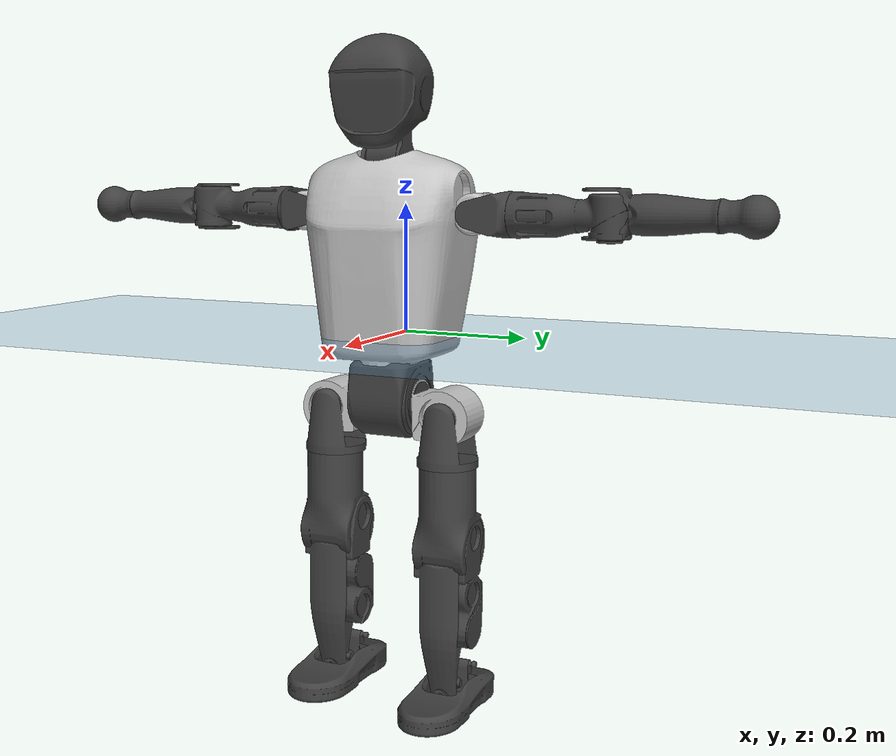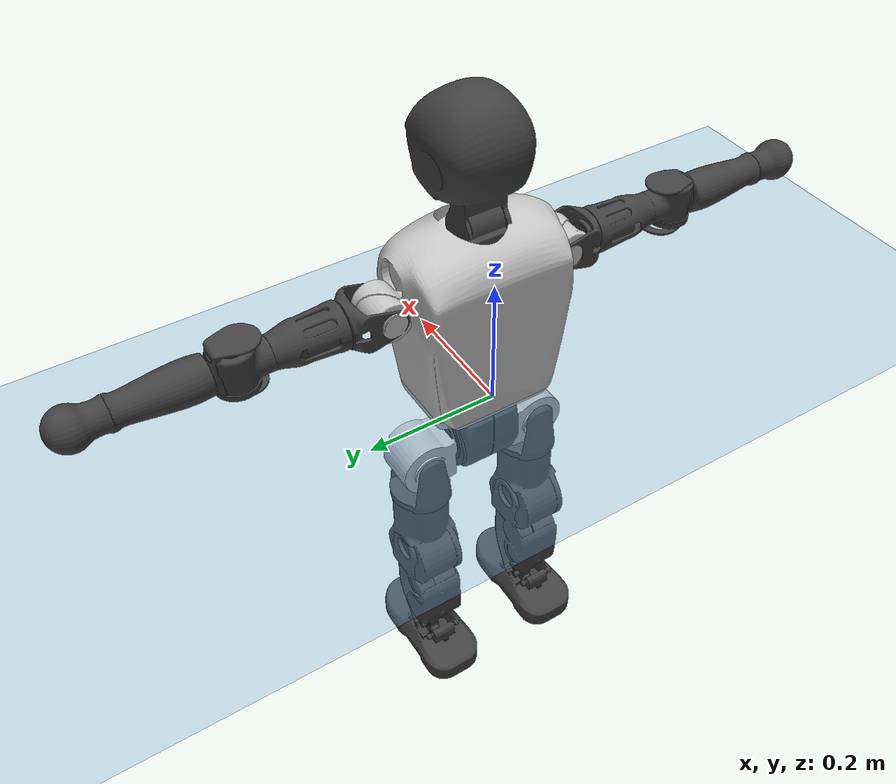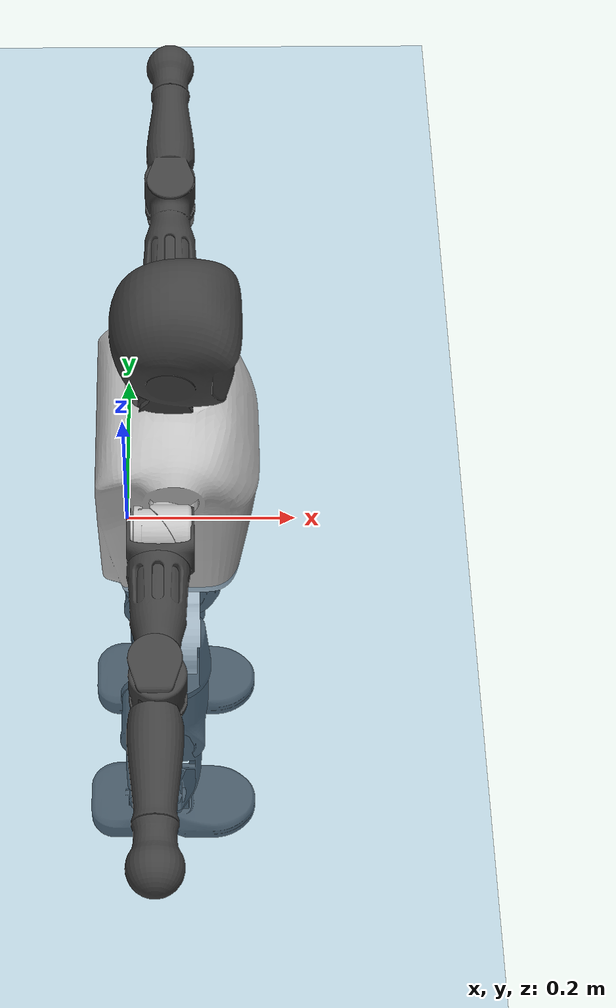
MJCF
<mujoco model="T1">
  <compiler angle="radian" assetdir="assets" balanceinertia="true" inertiafromgeom="false"/>

  <option timestep="0.005" density="1.2" viscosity="2e-05"/>

  <size nkey="1"/>

  <visual>
    <quality shadowsize="8192"/>
    <map shadowclip="0.5"/>
  </visual>

  <default>
    <default class="/">
      <joint armature="0.01" damping="0.01" frictionloss="0.1"/>
      <geom contype="0" conaffinity="0" group="1" solref="-1000 -80"/>
      <site size="0.01 0.005 0.005" group="5"/>
      <general forcelimited="true" biastype="affine" gainprm="25" biasprm="0 -25 -0.6"/>
      <default class="t1">
        <geom rgba="0.25 0.25 0.25 1"/>
        <default class="visual">
          <geom type="mesh" group="2"/>
        </default>
        <default class="collision">
          <geom group="3"/>
        </default>
        <default class="foot">
          <geom size="0.1115 0.05 0.015" type="box" condim="6" group="4" priority="1" solimp="0.015 1 0.015"/>
        </default>
        <default class="reward_collision_sphere">
          <geom group="5" rgba="1 0 0 1"/>
        </default>
      </default>
    </default>
  </default>

  <asset>
    <texture type="skybox" colorspace="auto" name="//unnamed_texture_0" builtin="gradient" rgb1="0.95 0.95 0.95" rgb2="0.95 0.95 0.95" width="100" height="600"/>
    <texture type="2d" colorspace="auto" name="texplane" builtin="checker" rgb1="0.345 0.575 0.748" rgb2="0.345 0.575 0.748" markrgb="1 1 1" width="512" height="512"/>
    <material name="MatPlane" class="/" texture="texplane" texuniform="true" texrepeat="2 2" specular="0.9"/>
    <mesh name="Trunk" class="/" file="Trunk.stl"/>
    <mesh name="H1" class="/" file="H1.stl"/>
    <mesh name="H2" class="/" file="H2.stl"/>
    <mesh name="AL1" class="/" file="AL1.stl"/>
    <mesh name="AL2" class="/" file="AL2.stl"/>
    <mesh name="AL3" class="/" file="AL3.stl"/>
    <mesh name="left_hand_link" class="/" file="left_hand_link.stl"/>
    <mesh name="AR1" class="/" file="AR1.stl"/>
    <mesh name="AR2" class="/" file="AR2.stl"/>
    <mesh name="AR3" class="/" file="AR3.stl"/>
    <mesh name="right_hand_link" class="/" file="right_hand_link.stl"/>
    <mesh name="Waist" class="/" file="Waist.stl"/>
    <mesh name="Hip_Pitch_Left" class="/" file="Hip_Pitch_Left.stl"/>
    <mesh name="Hip_Roll_Left" class="/" file="Hip_Roll_Left.stl"/>
    <mesh name="Hip_Yaw_Left" class="/" file="Hip_Yaw_Left.stl"/>
    <mesh name="Shank_Left" class="/" file="Shank_Left.stl"/>
    <mesh name="Ankle_Cross_Left" class="/" file="Ankle_Cross_Left.stl"/>
    <mesh name="left_foot_link" class="/" file="left_foot_link.stl"/>
    <mesh name="Hip_Pitch_Right" class="/" file="Hip_Pitch_Right.stl"/>
    <mesh name="Hip_Roll_Right" class="/" file="Hip_Roll_Right.stl"/>
    <mesh name="Hip_Yaw_Right" class="/" file="Hip_Yaw_Right.stl"/>
    <mesh name="Shank_Right" class="/" file="Shank_Right.stl"/>
    <mesh name="Ankle_Cross_Right" class="/" file="Ankle_Cross_Right.stl"/>
    <mesh name="right_foot_link" class="/" file="right_foot_link.stl"/>
  </asset>

  <worldbody>
    <geom name="floor" class="/" size="100 100 0.125" type="plane" group="0" material="MatPlane"/>
    <light name="toplight_shadow" class="/" pos="0 0 5" dir="0.0990148 0.0990148 -0.990148" type="directional" ambient="0.04 0.04 0.04" diffuse="0.55 0.55 0.55" specular="0.12 0.12 0.12"/>
    <light name="toplight_fill" class="/" pos="0 0 5" dir="0.0990148 0.0990148 -0.990148" type="directional" castshadow="false" ambient="0.04 0.04 0.04" diffuse="0.3 0.3 0.3" specular="0.08 0.08 0.08"/>
    <body name="trunk" childclass="t1" pos="0.00043099 -0.000104632 0.00280329" quat="1 0.000502071 2.64239e-05 0.000148694">
      <inertial pos="0.045171 0.000745073 0.0901354" quat="0.999986 -0.00511803 -0.00139794 0.000431669" mass="7.24141" diaginertia="0.0346196 0.0450039 0.0248849"/>
      <joint name="//unnamed_joint_0" type="free" armature="0" damping="0" frictionloss="0"/>
      <geom name="//unnamed_geom_1" class="visual" rgba="0.76 0.76 0.76 1" mesh="Trunk"/>
      <geom name="//unnamed_geom_2" class="collision" size="0.0646607 0.0862142 0.129321" pos="0.0497291 0 0.102855" type="box"/>
      <geom name="//unnamed_geom_3" class="reward_collision_sphere" size="0.0991463" pos="0.0497291 0 0.0857127"/>
      <geom name="//unnamed_geom_4" class="reward_collision_sphere" size="0.0129321" pos="0.0497291 0.0765408 0"/>
      <geom name="//unnamed_geom_5" class="reward_collision_sphere" size="0.0129321" pos="0.0497291 -0.0765408 0"/>
      <geom name="//unnamed_geom_6" class="reward_collision_sphere" size="0.0129321" pos="0.0497291 0.0963514 0.154283"/>
      <geom name="//unnamed_geom_7" class="reward_collision_sphere" size="0.0129321" pos="0.0497291 -0.0963514 0.154283"/>
      <site name="imu" pos="0.0103682 -0.0133285 0.00625036" size="0.00862142"/>
      <camera name="track" pos="0 -1.80096 0" quat="0.707107 0.707107 0 0" mode="trackcom"/>
      <camera name="ego_camera" pos="0.101116 0 0.359993" quat="-0.5 -0.5 0.5 0.5"/>
      <body name="H1" pos="0.0494262 -0.0027416 0.207519" quat="0.999999 -0.000497733 -0.000348143 -0.000825687">
        <inertial pos="-0.001965 -0.000770596 0.0499779" quat="0.763621 -0.013057 0.00234951 0.645529" mass="0.283405" diaginertia="9.79185e-05 0.000132055 7.18248e-05"/>
        <joint name="AAHead_yaw" pos="0 0 0" axis="-0.000251773 -0.00127068 0.999999" stiffness="0.0113439" range="-1.54823 1.61678" armature="0.00851108" damping="0.00843484" frictionloss="0.0865046"/>
        <geom name="//unnamed_geom_8" class="visual" mesh="H1"/>
        <body name="H2" pos="-0.000398394 -0.00260202 0.0538191" quat="1 7.49456e-05 9.52949e-05 2.6548e-05">
          <inertial pos="0.00794418 0.0033441 0.0869277" quat="0.988591 0.105371 -0.0762618 -0.0759496" mass="0.414265" diaginertia="0.000803495 0.0011318 0.000806298"/>
          <joint name="Head_pitch" pos="0 0 0" axis="0.000928685 -1 0.00031738" stiffness="0.00532827" range="-1.22859 0.400466" armature="0.00745637" damping="0" frictionloss="0.0857714"/>
          <geom name="//unnamed_geom_9" class="visual" mesh="H2"/>
          <geom name="//unnamed_geom_10" class="collision" size="0.0689714" pos="0.00828819 0 0.0942839"/>
          <geom name="//unnamed_geom_11" class="reward_collision_sphere" size="0.0775928" pos="0.0165764 0 0.0857127"/>
        </body>
      </body>
      <body name="AL1" pos="0.0472209 0.0962789 0.185911" quat="1 0.000186346 0.000760234 0.000283028">
        <inertial pos="0.0008449 0.0420368 0.00241173" quat="0.509301 0.4996 -0.496782 0.494187" mass="0.344059" diaginertia="0.000544509 0.000772445 0.000138633"/>
        <joint name="Left_Shoulder_Pitch" pos="0 0 0" axis="-1.87108e-05 1 0.000990726" range="-3.36136 1.16649" armature="0.00831082" damping="0.000556229" frictionloss="0.0871353"/>
        <geom name="//unnamed_geom_12" class="visual" rgba="0.76 0.76 0.76 1" mesh="AL1"/>
        <body name="AL2" pos="0.00162164 0.0457246 -0.000434459" quat="0.999999 -0.000934625 0.000565256 -0.000251019">
          <inertial pos="0.00479114 0.0337399 -0.00291064" quat="0.486286 0.511204 -0.485747 0.515991" mass="0.108118" diaginertia="0.000163328 0.000218157 8.50786e-05"/>
          <joint name="Left_Shoulder_Roll" pos="0 0 0" axis="-0.999996 -0.00281358 -0.000141668" range="-1.62504 1.75139" armature="0.0094516" damping="0" frictionloss="0.0827671"/>
          <geom name="//unnamed_geom_13" class="visual" mesh="AL2"/>
          <body name="AL3" pos="0.00399352 0.0576529 -7.27463e-05" quat="1 0.000171422 -0.000141549 0.000794904">
            <inertial pos="-0.00167359 0.0759694 0.000177699" quat="0.701299 0.712767 0.00624136 -0.0102096" mass="0.673285" diaginertia="0.00523522 0.00777827 0.000289444"/>
            <joint name="Left_Elbow_Pitch" pos="0 0 0" axis="0.000807419 -0.999999 -0.000795333" stiffness="0.00362702" range="-2.30652 2.27829" armature="0.00861812" damping="0.00939275" frictionloss="0.0881215"/>
            <geom name="//unnamed_geom_14" class="visual" mesh="AL3"/>
            <geom name="//unnamed_geom_15" class="collision" size="0.0258643 0.0646607" pos="0 0.045024 0" quat="0.707105 0.707108 0 0" type="cylinder"/>
            <geom name="//unnamed_geom_16" class="reward_collision_sphere" size="0.0310371"/>
            <body name="left_hand_link" pos="0.000803414 0.134912 0.00366498" quat="0.999999 0.000302971 0.00121318 4.60758e-05">
              <inertial pos="0.00024453 0.0973077 -0.00203978" quat="0.713471 0.700605 0.00771591 -0.00722964" mass="0.204779" diaginertia="0.00319446 0.00470901 9.4954e-05"/>
              <joint name="Left_Elbow_Yaw" pos="0 0 0" axis="0.00714614 -0.0141911 0.999874" stiffness="0.00044731" range="-2.45068 0.0517511" armature="0.00867906" damping="0.00055236" frictionloss="0.0951521"/>
              <geom name="//unnamed_geom_17" class="visual" mesh="left_hand_link"/>
              <geom name="//unnamed_geom_18" class="collision" size="0.0258643 0.0754374" pos="0 0.117062 0" quat="0.707105 0.707108 0 0" type="cylinder"/>
              <geom name="//unnamed_geom_19" class="reward_collision_sphere" size="0.0431071"/>
              <geom name="//unnamed_geom_20" class="reward_collision_sphere" size="0.030175" pos="0 0.0990528 0"/>
              <geom name="//unnamed_geom_21" class="reward_collision_sphere" size="0.030175" pos="0 0.193603 0"/>
            </body>
          </body>
        </body>
      </body>
      <body name="AR1" pos="0.0448206 -0.0920635 0.186888" quat="1 4.70252e-05 0.000699297 0.000330695">
        <inertial pos="-0.00167913 -0.0402593 -0.00133468" quat="0.504701 0.492796 -0.505255 0.497138" mass="0.351587" diaginertia="0.0005398 0.000778873 0.000137113"/>
        <joint name="Right_Shoulder_Pitch" pos="0 0 0" axis="-0.00706348 -0.999946 0.00760106" stiffness="0.013618" range="-1.17971 3.3308" armature="0.00864622" damping="0.0212048" frictionloss="0.0865816"/>
        <geom name="//unnamed_geom_22" class="visual" rgba="0.76 0.76 0.76 1" mesh="AR1"/>
        <body name="AR2" pos="-0.00254863 -0.038859 0.000218678" quat="0.999999 -0.000613727 0.000887068 0.000192041">
          <inertial pos="0.0005595 -0.0329981 -0.00248091" quat="0.513183 0.47952 -0.511068 0.495493" mass="0.102527" diaginertia="0.000153739 0.000202083 8.28748e-05"/>
          <joint name="Right_Shoulder_Roll" pos="0 0 0" axis="-0.999957 -0.00139811 0.00917139" stiffness="0.0116439" range="-1.70012 1.52221" armature="0.00875788" damping="0.00863" frictionloss="0.0751548"/>
          <geom name="//unnamed_geom_23" class="visual" mesh="AR2"/>
          <body name="AR3" pos="-0.00210022 -0.0524 0.00250426" quat="1 0.000514467 0.000116235 5.27599e-05">
            <inertial pos="-0.000521737 -0.0766748 0.000604065" quat="0.703017 0.711147 0.00605602 0.00106841" mass="0.637908" diaginertia="0.00490889 0.00782647 0.000288796"/>
            <joint name="Right_Elbow_Pitch" pos="0 0 0" axis="0.000328988 0.999997 0.00226151" stiffness="0.00997533" range="-2.27309 2.25962" armature="0.00902933" damping="0.0177804" frictionloss="0.0964338"/>
            <geom name="//unnamed_geom_24" class="visual" mesh="AR3"/>
            <geom name="//unnamed_geom_25" class="collision" size="0.0258643 0.0646607" pos="0 -0.045024 0" quat="0.707105 0.707108 0 0" type="cylinder"/>
            <geom name="//unnamed_geom_26" class="reward_collision_sphere" size="0.0310371"/>
            <body name="right_hand_link" pos="-0.00276039 -0.130745 -0.000190452" quat="0.999999 -0.000339525 0.000590815 0.0009519">
              <inertial pos="-0.0006907 -0.0982989 0.00313005" quat="0.710848 0.703256 -0.00658852 0.00909814" mass="0.201454" diaginertia="0.00300248 0.00470413 9.70771e-05"/>
              <joint name="Right_Elbow_Yaw" pos="0 0 0" axis="0.00375179 0.000807998 0.999993" stiffness="0.00366121" range="-0.0564858 2.42628" armature="0.00964934" damping="0.0104524" frictionloss="0.0865828"/>
              <geom name="//unnamed_geom_27" class="visual" mesh="right_hand_link"/>
              <geom name="//unnamed_geom_28" class="collision" size="0.0258643 0.0754374" pos="0 -0.117062 0" quat="0.707105 0.707108 0 0" type="cylinder"/>
              <geom name="//unnamed_geom_29" class="reward_collision_sphere" size="0.0431071"/>
              <geom name="//unnamed_geom_30" class="reward_collision_sphere" size="0.030175" pos="0 -0.0990528 0"/>
              <geom name="//unnamed_geom_31" class="reward_collision_sphere" size="0.030175" pos="0 -0.193603 0"/>
            </body>
          </body>
        </body>
      </body>
      <body name="Waist" pos="0.0523165 0.000237749 -0.101641" quat="1 -1.1814e-05 -1.95202e-06 1.28163e-05">
        <inertial pos="0.00381417 -0.000676251 0.00616025" quat="0.98436 -0.00558279 -0.176 0.00528657" mass="1.64815" diaginertia="0.00202239 0.00293598 0.00209172"/>
        <joint name="Waist" pos="0 0 0" axis="0.000104144 -0.000222437 1" stiffness="0.00200134" range="-1.52979 1.59637" armature="0.0075584" damping="0.0143751" frictionloss="0.0906822"/>
        <geom name="//unnamed_geom_32" class="visual" mesh="Waist"/>
        <body name="Hip_Pitch_Left" pos="-0.00147335 0.0975494 -0.000990298" quat="0.999999 -9.24647e-05 0.000164296 0.00104053">
          <inertial pos="-0.00108807 -0.00455903 -0.0156511" quat="0.975563 0.219113 0.016124 0.00239747" mass="0.639038" diaginertia="0.00068728 0.000855738 0.000564786"/>
          <joint name="Left_Hip_Pitch" pos="0 0 0" axis="-0.00229614 0.999997 -0.00048589" stiffness="0.011285" range="-1.81136 1.62477" armature="0.00863232" damping="0.0193341" frictionloss="0.086188"/>
          <geom name="//unnamed_geom_33" class="visual" rgba="0.76 0.76 0.76 1" mesh="Hip_Pitch_Left"/>
          <body name="Hip_Roll_Left" pos="0.00193274 -0.000819804 -0.0200629" quat="0.999999 0.000225545 -0.000578493 0.000916211">
            <inertial pos="-0.000333763 -0.000376674 -0.046323" quat="0.70645 -0.00704139 -0.00502774 0.70771" mass="0.2462" diaginertia="0.000688224 0.000870467 0.000230503"/>
            <joint name="Left_Hip_Roll" pos="0 0 0" axis="-1 -0.000394038 -0.000184734" range="-1.56835 0.198343" armature="0.00846416" damping="0.0164034" frictionloss="0.0983062"/>
            <geom name="//unnamed_geom_34" class="visual" mesh="Hip_Roll_Left"/>
            <geom name="//unnamed_geom_35" class="reward_collision_sphere" size="0.0474178"/>
            <body name="Hip_Yaw_Left" pos="0.000232241 0.000464941 -0.0722772" quat="0.999999 -0.000265763 -0.000400944 0.00108598">
              <inertial pos="-0.00576979 -0.00065272 -0.0764037" quat="0.69116 -0.03192 -0.038604 0.720964" mass="1.35844" diaginertia="0.00994679 0.0146274 0.00123231"/>
              <joint name="Left_Hip_Yaw" pos="0 0 0" axis="-0.00933659 -0.00692029 -0.999932" range="-1.00267 0.980215" armature="0.00840679" damping="0.00718622" frictionloss="0.0857201"/>
              <geom name="//unnamed_geom_36" class="visual" mesh="Hip_Yaw_Left"/>
              <geom name="//unnamed_geom_37" class="collision" size="0.0431071 0.0689714" type="cylinder"/>
              <body name="Shank_Left" pos="-0.012068 -0.000641961 -0.117317" quat="1 -0.000401475 -0.000170726 -0.000882393">
                <inertial pos="-0.00501897 0.00122571 -0.107628" quat="0.998337 0.00194744 -0.0135711 0.0559998" mass="1.1371" diaginertia="0.013353 0.0213642 0.000875965"/>
                <joint name="Left_Knee_Pitch" pos="0 0 0" axis="0.000284889 0.999995 -0.00299347" stiffness="0.00453223" range="0.0182195 2.35274" armature="0.00874873" damping="0.0162499" frictionloss="0.0980913"/>
                <geom name="//unnamed_geom_38" class="visual" mesh="Shank_Left"/>
                <geom name="//unnamed_geom_39" class="collision" size="0.0431071 0.0646607" pos="0 0 -0.102855" type="cylinder"/>
                <geom name="//unnamed_geom_40" class="reward_collision_sphere" size="0.0560392"/>
                <body name="Ankle_Cross_Left" pos="-0.0016131 -0.00129053 -0.241334" quat="0.999999 -0.000977921 -0.000628175 -5.81208e-06">
                  <inertial pos="-0.0019247 0.00200849 -0.00889898" quat="0.442789 0.554405 0.548869 0.441946" mass="0.0477073" diaginertia="1.2107e-05 1.51631e-05 5.2582e-06"/>
                  <joint name="Left_Ankle_Pitch" pos="0 0 0" axis="-0.0116581 0.999932 -0.00086509" range="-0.905771 0.396655" armature="0.00766719" damping="0.0160885" frictionloss="0.0977992"/>
                  <geom name="//unnamed_geom_41" class="visual" mesh="Ankle_Cross_Left"/>
                  <body name="left_foot_link" pos="0.00219424 -0.000525265 -0.0134797" quat="1 0.00011072 0.000118952 0.000377377">
                    <inertial pos="-0.000779358 -0.00247221 -0.00828388" quat="-0.000103916 0.620652 -6.05204e-05 0.784086" mass="0.430408" diaginertia="0.00109467 0.00141673 0.00102071"/>
                    <joint name="Left_Ankle_Roll" pos="0 0 0" axis="-0.999979 0.00576978 -0.0029042" range="-0.49114 0.416587" armature="0.0085081" damping="0.00547615" frictionloss="0.0816538"/>
                    <geom name="//unnamed_geom_42" class="visual" mesh="left_foot_link"/>
                    <geom name="left_foot" class="foot" size="0.0978732 0.0416592 0.014303" pos="0.00828819 0 -0.0128569"/>
                    <geom name="//unnamed_geom_44" class="reward_collision_sphere" size="0.0448314" pos="0.00828819 0 -0.0128569"/>
                    <geom name="//unnamed_geom_45" class="reward_collision_sphere" size="0.0258643" pos="0.0787378 -0.020711 -0.0128569"/>
                    <geom name="//unnamed_geom_46" class="reward_collision_sphere" size="0.0258643" pos="-0.0580173 -0.020711 -0.0128569"/>
                    <site name="left_foot" class="foot" pos="0.00828819 0 -0.0128569" size="0.00862142"/>
                  </body>
                </body>
              </body>
            </body>
          </body>
        </body>
        <body name="Hip_Pitch_Right" pos="-0.00157852 -0.0968007 0.00164802" quat="0.999999 -0.000695212 -0.000529114 0.00105465">
          <inertial pos="0.000346396 0.00725793 -0.0128636" quat="0.972853 -0.230267 0.0219883 0.00717972" mass="0.653676" diaginertia="0.000706964 0.00087021 0.000598449"/>
          <joint name="Right_Hip_Pitch" pos="0 0 0" axis="-0.0115322 -0.999907 0.00727641" range="-1.58089 1.81056" armature="0.00971842" damping="0.00919205" frictionloss="0.0959725"/>
          <geom name="//unnamed_geom_47" class="visual" rgba="0.76 0.76 0.76 1" mesh="Hip_Pitch_Right"/>
          <body name="Hip_Roll_Right" pos="0.000728351 -0.00160479 -0.0144346" quat="1 -0.00059843 0.000723001 -0.000291336">
            <inertial pos="0.00335366 0.00023936 -0.0485705" quat="0.702453 -0.00657183 0.00638925 0.711671" mass="0.237739" diaginertia="0.000635656 0.000865361 0.000228887"/>
            <joint name="Right_Hip_Roll" pos="0 0 0" axis="-0.999995 -0.00172094 0.00258795" stiffness="0.00845891" range="-0.188336 1.6295" armature="0.00815902" damping="0.00623883" frictionloss="0.0854708"/>
            <geom name="//unnamed_geom_48" class="visual" mesh="Hip_Roll_Right"/>
            <geom name="//unnamed_geom_49" class="reward_collision_sphere" size="0.0474178"/>
            <body name="Hip_Yaw_Right" pos="-0.000184542 -0.00262343 -0.0697582" quat="0.999999 -0.00108311 -0.000656405 0.000607202">
              <inertial pos="-0.00281862 0.000494677 -0.0761481" quat="0.706287 -0.0261124 -0.0363637 0.706509" mass="1.45466" diaginertia="0.0107435 0.0158548 0.00126982"/>
              <joint name="Right_Hip_Yaw" pos="0 0 0" axis="-0.00937838 -0.00443586 -0.999946" range="-1.01528 0.967724" armature="0.00878094" damping="0.00413512" frictionloss="0.0751903"/>
              <geom name="//unnamed_geom_50" class="visual" mesh="Hip_Yaw_Right"/>
              <geom name="//unnamed_geom_51" class="collision" size="0.0431071 0.0689714" type="cylinder"/>
              <body name="Shank_Right" pos="-0.0140721 0.00233378 -0.116181" quat="0.999999 -0.000387188 -0.00112325 -0.000325916">
                <inertial pos="-0.00222461 0.00190492 -0.104198" quat="0.999296 -0.000699894 -0.0222217 -0.0302142" mass="1.19132" diaginertia="0.0137427 0.0202501 0.000888536"/>
                <joint name="Right_Knee_Pitch" pos="0 0 0" axis="0.00379145 -0.999988 -0.00306338" stiffness="0.00904111" range="-2.34073 -0.0197532" armature="0.00819139" damping="0.0204997" frictionloss="0.0928188"/>
                <geom name="//unnamed_geom_52" class="visual" mesh="Shank_Right"/>
                <geom name="//unnamed_geom_53" class="collision" size="0.0431071 0.0646607" pos="0 0 -0.102855" type="cylinder"/>
                <geom name="//unnamed_geom_54" class="reward_collision_sphere" size="0.0560392"/>
                <body name="Ankle_Cross_Right" pos="-0.00197995 -0.00181789 -0.242271" quat="0.999999 -0.0010449 -0.000510383 -0.000746954">
                  <inertial pos="-0.0031227 0.000714697 -0.00713614" quat="0.443793 0.550896 0.546237 0.448539" mass="0.0436755" diaginertia="1.09402e-05 1.46314e-05 5.13446e-06"/>
                  <joint name="Right_Ankle_Pitch" pos="0 0 0" axis="0.00353711 -0.999949 -0.00942652" range="-0.355457 0.815515" armature="0.00982824" damping="0" frictionloss="0.0775711"/>
                  <geom name="//unnamed_geom_55" class="visual" mesh="Ankle_Cross_Right"/>
                  <body name="right_foot_link" pos="0.00228822 -0.000985318 -0.00761649" quat="0.999999 -0.000653586 -0.000603832 -0.000655096">
                    <inertial pos="-0.00018671 0.000614997 -0.0104994" quat="0.0026849 0.618821 -0.00355112 0.785519" mass="0.461117" diaginertia="0.00103557 0.00141463 0.00100529"/>
                    <joint name="Right_Ankle_Roll" pos="0 0 0" axis="-0.999891 -0.0141003 0.00436813" range="-0.399316 0.476779" armature="0.00730353" damping="0.00489102" frictionloss="0.0820209"/>
                    <geom name="//unnamed_geom_56" class="visual" mesh="right_foot_link"/>
                    <geom name="right_foot" class="foot" size="0.0967251 0.0440446 0.0133766" pos="0.00828819 0 -0.0128569"/>
                    <geom name="//unnamed_geom_58" class="reward_collision_sphere" size="0.0344857"/>
                    <geom name="//unnamed_geom_59" class="reward_collision_sphere" size="0.0258643" pos="0.00828819 0 -0.0128569"/>
                    <geom name="//unnamed_geom_60" class="reward_collision_sphere" size="0.0258643" pos="0.0787378 0.020711 -0.0128569"/>
                    <geom name="//unnamed_geom_61" class="reward_collision_sphere" size="0.0258643" pos="-0.0580173 0.020711 -0.0128569"/>
                    <site name="right_foot" class="foot" pos="0.00828819 0 -0.0128569" size="0.00862142"/>
                  </body>
                </body>
              </body>
            </body>
          </body>
        </body>
      </body>
    </body>
  </worldbody>

  <contact>
    <pair class="/" geom1="floor" geom2="left_foot" name="//unnamed_contact_0"/>
    <pair class="/" geom1="floor" geom2="right_foot" name="//unnamed_contact_1"/>
  </contact>

  <actuator>
    <general name="AAHead_yaw" class="/" joint="AAHead_yaw" forcerange="-5.62961 5.62961" gainprm="23.3929" biasprm="0 -23.3929 -0.528486"/>
    <general name="Head_pitch" class="/" joint="Head_pitch" forcerange="-5.79406 5.79406" gainprm="23.3929" biasprm="0 -23.3929 -0.528486"/>
    <general name="Left_Shoulder_Pitch" class="/" joint="Left_Shoulder_Pitch" forcerange="-15.1579 15.1579" gainprm="23.3929" biasprm="0 -23.3929 -0.528486"/>
    <general name="Left_Shoulder_Roll" class="/" joint="Left_Shoulder_Roll" forcerange="-15.2646 15.2646" gainprm="23.3929" biasprm="0 -23.3929 -0.528486"/>
    <general name="Left_Elbow_Pitch" class="/" joint="Left_Elbow_Pitch" forcerange="-17.1962 17.1962" gainprm="23.3929" biasprm="0 -23.3929 -0.528486"/>
    <general name="Left_Elbow_Yaw" class="/" joint="Left_Elbow_Yaw" forcerange="-16.1263 16.1263" gainprm="23.3929" biasprm="0 -23.3929 -0.528486"/>
    <general name="Right_Shoulder_Pitch" class="/" joint="Right_Shoulder_Pitch" forcerange="-15.1718 15.1718" gainprm="23.3929" biasprm="0 -23.3929 -0.528486"/>
    <general name="Right_Shoulder_Roll" class="/" joint="Right_Shoulder_Roll" forcerange="-15.7015 15.7015" gainprm="23.3929" biasprm="0 -23.3929 -0.528486"/>
    <general name="Right_Elbow_Pitch" class="/" joint="Right_Elbow_Pitch" forcerange="-15.4613 15.4613" gainprm="23.3929" biasprm="0 -23.3929 -0.528486"/>
    <general name="Right_Elbow_Yaw" class="/" joint="Right_Elbow_Yaw" forcerange="-17.0381 17.0381" gainprm="23.3929" biasprm="0 -23.3929 -0.528486"/>
    <general name="Waist" class="/" joint="Waist" forcerange="-27.6887 27.6887" gainprm="23.3929" biasprm="0 -23.3929 -0.528486"/>
    <general name="Left_Hip_Pitch" class="/" joint="Left_Hip_Pitch" forcerange="-35.8199 35.8199" gainprm="23.3929" biasprm="0 -23.3929 -0.528486"/>
    <general name="Left_Hip_Roll" class="/" joint="Left_Hip_Roll" forcerange="-25.2322 25.2322" gainprm="23.3929" biasprm="0 -23.3929 -0.528486"/>
    <general name="Left_Hip_Yaw" class="/" joint="Left_Hip_Yaw" forcerange="-26.4274 26.4274" gainprm="23.3929" biasprm="0 -23.3929 -0.528486"/>
    <general name="Left_Knee_Pitch" class="/" joint="Left_Knee_Pitch" forcerange="-56.5556 56.5556" gainprm="23.3929" biasprm="0 -23.3929 -0.528486"/>
    <general name="Left_Ankle_Pitch" class="/" joint="Left_Ankle_Pitch" forcerange="-16.6412 16.6412" gainprm="23.3929" biasprm="0 -23.3929 -0.528486"/>
    <general name="Left_Ankle_Roll" class="/" joint="Left_Ankle_Roll" forcerange="-12.9408 12.9408" gainprm="23.3929" biasprm="0 -23.3929 -0.528486"/>
    <general name="Right_Hip_Pitch" class="/" joint="Right_Hip_Pitch" forcerange="-42.3056 42.3056" gainprm="23.3929" biasprm="0 -23.3929 -0.528486"/>
    <general name="Right_Hip_Roll" class="/" joint="Right_Hip_Roll" forcerange="-25.3492 25.3492" gainprm="23.3929" biasprm="0 -23.3929 -0.528486"/>
    <general name="Right_Hip_Yaw" class="/" joint="Right_Hip_Yaw" forcerange="-26.3616 26.3616" gainprm="23.3929" biasprm="0 -23.3929 -0.528486"/>
    <general name="Right_Knee_Pitch" class="/" joint="Right_Knee_Pitch" forcerange="-56.7494 56.7494" gainprm="23.3929" biasprm="0 -23.3929 -0.528486"/>
    <general name="Right_Ankle_Pitch" class="/" joint="Right_Ankle_Pitch" forcerange="-16.2131 16.2131" gainprm="23.3929" biasprm="0 -23.3929 -0.528486"/>
    <general name="Right_Ankle_Roll" class="/" joint="Right_Ankle_Roll" forcerange="-11.794 11.794" gainprm="23.3929" biasprm="0 -23.3929 -0.528486"/>
  </actuator>

  <sensor>
    <gyro site="imu" name="imu_angular_velocity"/>
    <velocimeter site="imu" name="imu_linear_velocity"/>
    <framelinvel objtype="site" objname="left_foot" name="left_foot_global_linear_velocity"/>
    <framelinvel objtype="site" objname="right_foot" name="right_foot_global_linear_velocity"/>
  </sensor>

  <keyframe>
    <key name="home" qpos="0 0 0.6385 1 0 0 0 0 0 0 1.4 0 -0.4 0 -1.4 0 0.4 0 -0.4 0 0 0.8 -0.4 0 0.4 0 0 -0.8 0.4 0"/>
  </keyframe>
</mujoco>
